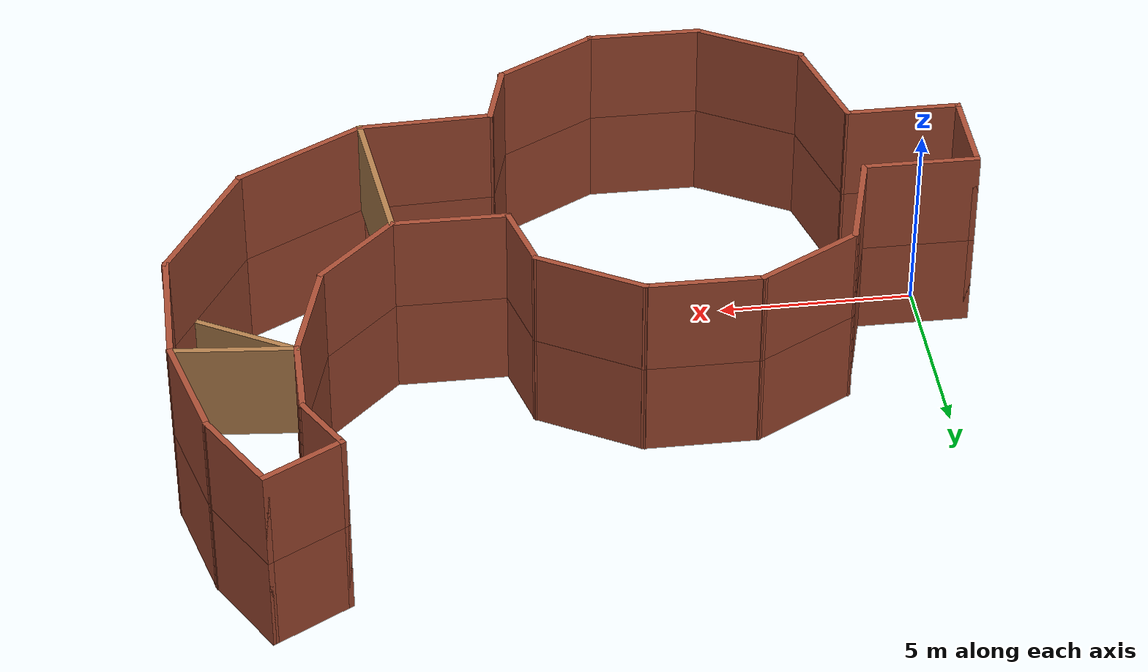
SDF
<?xml version='1.0'?>
<sdf version='1.7'>
  <model name='walls_2'>
    <pose>8.92882 2.76252 0 0 -0 0</pose>
    <link name='Wall_0'>
      <collision name='Wall_0_Collision'>
        <geometry>
          <box>
            <size>2.5 0.15 2.5</size>
          </box>
        </geometry>
        <pose>0 0 1.25 0 -0 0</pose>
      </collision>
      <visual name='Wall_0_Visual'>
        <pose>0 0 1.25 0 -0 0</pose>
        <geometry>
          <box>
            <size>2.5 0.15 2.5</size>
          </box>
        </geometry>
        <material>
          <script>
            <uri>file://media/materials/scripts/gazebo.material</uri>
            <name>Gazebo/Bricks</name>
          </script>
          <ambient>1 1 1 1</ambient>
        </material>
        <meta>
          <layer>0</layer>
        </meta>
      </visual>
      <pose>-10.1188 -2.95752 0 0 -0 -1.5708</pose>
    </link>
    <link name='Wall_10'>
      <collision name='Wall_10_Collision'>
        <geometry>
          <box>
            <size>2 0.15 2.5</size>
          </box>
        </geometry>
        <pose>0 0 1.25 0 -0 0</pose>
      </collision>
      <visual name='Wall_10_Visual'>
        <pose>0 0 1.25 0 -0 0</pose>
        <geometry>
          <box>
            <size>2 0.15 2.5</size>
          </box>
        </geometry>
        <material>
          <script>
            <uri>file://media/materials/scripts/gazebo.material</uri>
            <name>Gazebo/Bricks</name>
          </script>
          <ambient>1 1 1 1</ambient>
        </material>
        <meta>
          <layer>0</layer>
        </meta>
      </visual>
      <pose>1.49456 0.076885 0 0 -0 -1.309</pose>
    </link>
    <link name='Wall_12'>
      <collision name='Wall_12_Collision'>
        <geometry>
          <box>
            <size>3 0.15 2.5</size>
          </box>
        </geometry>
        <pose>0 0 1.25 0 -0 0</pose>
      </collision>
      <visual name='Wall_12_Visual'>
        <pose>0 0 1.25 0 -0 0</pose>
        <geometry>
          <box>
            <size>3 0.15 2.5</size>
          </box>
        </geometry>
        <material>
          <script>
            <uri>file://media/materials/scripts/gazebo.material</uri>
            <name>Gazebo/Bricks</name>
          </script>
          <ambient>1 1 1 1</ambient>
        </material>
        <meta>
          <layer>0</layer>
        </meta>
      </visual>
      <pose>-6.90001 -5.50897 0 0 -0 -1.309</pose>
    </link>
    <link name='Wall_13'>
      <collision name='Wall_13_Collision'>
        <geometry>
          <box>
            <size>3 0.15 2.5</size>
          </box>
        </geometry>
        <pose>0 0 1.25 0 -0 0</pose>
      </collision>
      <visual name='Wall_13_Visual'>
        <pose>0 0 1.25 0 -0 0</pose>
        <geometry>
          <box>
            <size>3 0.15 2.5</size>
          </box>
        </geometry>
        <material>
          <script>
            <uri>file://media/materials/scripts/gazebo.material</uri>
            <name>Gazebo/Bricks</name>
          </script>
          <ambient>1 1 1 1</ambient>
        </material>
        <meta>
          <layer>0</layer>
        </meta>
      </visual>
      <pose>-5.2971 -7.59791 0 0 -0 -0.523599</pose>
    </link>
    <link name='Wall_14'>
      <collision name='Wall_14_Collision'>
        <geometry>
          <box>
            <size>3 0.15 2.5</size>
          </box>
        </geometry>
        <pose>0 0 1.25 0 -0 0</pose>
      </collision>
      <visual name='Wall_14_Visual'>
        <pose>0 0 1.25 0 -0 0</pose>
        <geometry>
          <box>
            <size>3 0.15 2.5</size>
          </box>
        </geometry>
        <material>
          <script>
            <uri>file://media/materials/scripts/gazebo.material</uri>
            <name>Gazebo/Bricks</name>
          </script>
          <ambient>1 1 1 1</ambient>
        </material>
        <meta>
          <layer>0</layer>
        </meta>
      </visual>
      <pose>-2.63802 -8.31041 0 0 -0 0</pose>
    </link>
    <link name='Wall_15'>
      <collision name='Wall_15_Collision'>
        <geometry>
          <box>
            <size>3 0.15 2.5</size>
          </box>
        </geometry>
        <pose>0 0 1.25 0 -0 0</pose>
      </collision>
      <visual name='Wall_15_Visual'>
        <pose>0 0 1.25 0 -0 0</pose>
        <geometry>
          <box>
            <size>3 0.15 2.5</size>
          </box>
        </geometry>
        <material>
          <script>
            <uri>file://media/materials/scripts/gazebo.material</uri>
            <name>Gazebo/Bricks</name>
          </script>
          <ambient>1 1 1 1</ambient>
        </material>
        <meta>
          <layer>0</layer>
        </meta>
      </visual>
      <pose>0.02107 -7.59791 0 0 -0 0.523599</pose>
    </link>
    <link name='Wall_16'>
      <collision name='Wall_16_Collision'>
        <geometry>
          <box>
            <size>2 0.15 2.5</size>
          </box>
        </geometry>
        <pose>0 0 1.25 0 -0 0</pose>
      </collision>
      <visual name='Wall_16_Visual'>
        <pose>0 0 1.25 0 -0 0</pose>
        <geometry>
          <box>
            <size>2 0.15 2.5</size>
          </box>
        </geometry>
        <material>
          <script>
            <uri>file://media/materials/scripts/gazebo.material</uri>
            <name>Gazebo/Bricks</name>
          </script>
          <ambient>1 1 1 1</ambient>
        </material>
        <meta>
          <layer>0</layer>
        </meta>
      </visual>
      <pose>1.49456 -5.99193 0 0 -0 1.309</pose>
    </link>
    <link name='Wall_18'>
      <collision name='Wall_18_Collision'>
        <geometry>
          <box>
            <size>3 0.15 2.5</size>
          </box>
        </geometry>
        <pose>0 0 1.25 0 -0 0</pose>
      </collision>
      <visual name='Wall_18_Visual'>
        <pose>0 0 1.25 0 -0 0</pose>
        <geometry>
          <box>
            <size>3 0.15 2.5</size>
          </box>
        </geometry>
        <material>
          <script>
            <uri>file://media/materials/scripts/gazebo.material</uri>
            <name>Gazebo/Bricks</name>
          </script>
          <ambient>1 1 1 1</ambient>
        </material>
        <meta>
          <layer>0</layer>
        </meta>
      </visual>
      <pose>3.15897 -0.816596 0 0 -0 0</pose>
    </link>
    <link name='Wall_19'>
      <collision name='Wall_19_Collision'>
        <geometry>
          <box>
            <size>2.75 0.15 2.5</size>
          </box>
        </geometry>
        <pose>0 0 1.25 0 -0 0</pose>
      </collision>
      <visual name='Wall_19_Visual'>
        <pose>0 0 1.25 0 -0 0</pose>
        <geometry>
          <box>
            <size>2.75 0.15 2.5</size>
          </box>
        </geometry>
        <material>
          <script>
            <uri>file://media/materials/scripts/gazebo.material</uri>
            <name>Gazebo/Bricks</name>
          </script>
          <ambient>1 1 1 1</ambient>
        </material>
        <meta>
          <layer>0</layer>
        </meta>
      </visual>
      <pose>5.50321 0.102643 0 0 -0 0.785398</pose>
    </link>
    <link name='Wall_2'>
      <collision name='Wall_2_Collision'>
        <geometry>
          <box>
            <size>3 0.15 2.5</size>
          </box>
        </geometry>
        <pose>0 0 1.25 0 -0 0</pose>
      </collision>
      <visual name='Wall_2_Visual'>
        <pose>0 0 1.25 0 -0 0</pose>
        <geometry>
          <box>
            <size>3 0.15 2.5</size>
          </box>
        </geometry>
        <material>
          <script>
            <uri>file://media/materials/scripts/gazebo.material</uri>
            <name>Gazebo/Bricks</name>
          </script>
          <ambient>1 1 1 1</ambient>
        </material>
        <meta>
          <layer>0</layer>
        </meta>
      </visual>
      <pose>-8.69382 -1.78252 0 0 -0 0</pose>
    </link>
    <link name='Wall_20'>
      <collision name='Wall_20_Collision'>
        <geometry>
          <box>
            <size>3 0.15 2.5</size>
          </box>
        </geometry>
        <pose>0 0 1.25 0 -0 0</pose>
      </collision>
      <visual name='Wall_20_Visual'>
        <pose>0 0 1.25 0 -0 0</pose>
        <geometry>
          <box>
            <size>3 0.15 2.5</size>
          </box>
        </geometry>
        <material>
          <script>
            <uri>file://media/materials/scripts/gazebo.material</uri>
            <name>Gazebo/Bricks</name>
          </script>
          <ambient>1 1 1 1</ambient>
        </material>
        <meta>
          <layer>0</layer>
        </meta>
      </visual>
      <pose>6.79127 2.39833 0 0 -0 1.309</pose>
    </link>
    <link name='Wall_21'>
      <collision name='Wall_21_Collision'>
        <geometry>
          <box>
            <size>2.25 0.15 2.5</size>
          </box>
        </geometry>
        <pose>0 0 1.25 0 -0 0</pose>
      </collision>
      <visual name='Wall_21_Visual'>
        <pose>0 0 1.25 0 -0 0</pose>
        <geometry>
          <box>
            <size>2.25 0.15 2.5</size>
          </box>
        </geometry>
        <material>
          <script>
            <uri>file://media/materials/scripts/gazebo.material</uri>
            <name>Gazebo/Bricks</name>
          </script>
          <ambient>1 1 1 1</ambient>
        </material>
        <meta>
          <layer>0</layer>
        </meta>
      </visual>
      <pose>7.16008 4.82477 0 0 -0 1.5708</pose>
    </link>
    <link name='Wall_22'>
      <collision name='Wall_22_Collision'>
        <geometry>
          <box>
            <size>1.75 0.15 2.5</size>
          </box>
        </geometry>
        <pose>0 0 1.25 0 -0 0</pose>
      </collision>
      <visual name='Wall_22_Visual'>
        <pose>0 0 1.25 0 -0 0</pose>
        <geometry>
          <box>
            <size>1.75 0.15 2.5</size>
          </box>
        </geometry>
        <material>
          <script>
            <uri>file://media/materials/scripts/gazebo.material</uri>
            <name>Gazebo/Bricks</name>
          </script>
          <ambient>1 1 1 1</ambient>
        </material>
        <meta>
          <layer>0</layer>
        </meta>
      </visual>
      <pose>6.76008 6.56759 0 0 -0 2.0944</pose>
    </link>
    <link name='Wall_23'>
      <collision name='Wall_23_Collision'>
        <geometry>
          <box>
            <size>2.25 0.15 2.5</size>
          </box>
        </geometry>
        <pose>0 0 1.25 0 -0 0</pose>
      </collision>
      <visual name='Wall_23_Visual'>
        <pose>0 0 1.25 0 -0 0</pose>
        <geometry>
          <box>
            <size>2.25 0.15 2.5</size>
          </box>
        </geometry>
        <material>
          <script>
            <uri>file://media/materials/scripts/gazebo.material</uri>
            <name>Gazebo/Bricks</name>
          </script>
          <ambient>1 1 1 1</ambient>
        </material>
        <meta>
          <layer>0</layer>
        </meta>
      </visual>
      <pose>7.26941 7.78541 0 0 -0 0.523599</pose>
    </link>
    <link name='Wall_27'>
      <collision name='Wall_27_Collision'>
        <geometry>
          <box>
            <size>2.5 0.15 2.5</size>
          </box>
        </geometry>
        <pose>0 0 1.25 0 -0 0</pose>
      </collision>
      <visual name='Wall_27_Visual'>
        <pose>0 0 1.25 0 -0 0</pose>
        <geometry>
          <box>
            <size>2.5 0.15 2.5</size>
          </box>
        </geometry>
        <material>
          <script>
            <uri>file://media/materials/scripts/gazebo.material</uri>
            <name>Gazebo/Bricks</name>
          </script>
          <ambient>1 1 1 1</ambient>
        </material>
        <meta>
          <layer>0</layer>
        </meta>
      </visual>
      <pose>8.76624 7.29283 0 0 -0 -1.0472</pose>
    </link>
    <link name='Wall_28'>
      <collision name='Wall_28_Collision'>
        <geometry>
          <box>
            <size>3 0.15 2.5</size>
          </box>
        </geometry>
        <pose>0 0 1.25 0 -0 0</pose>
      </collision>
      <visual name='Wall_28_Visual'>
        <pose>0 0 1.25 0 -0 0</pose>
        <geometry>
          <box>
            <size>3 0.15 2.5</size>
          </box>
        </geometry>
        <material>
          <script>
            <uri>file://media/materials/scripts/gazebo.material</uri>
            <name>Gazebo/Bricks</name>
          </script>
          <ambient>1 1 1 1</ambient>
        </material>
        <meta>
          <layer>0</layer>
        </meta>
      </visual>
      <pose>9.72255 4.89881 0 0 -0 -1.309</pose>
    </link>
    <link name='Wall_29'>
      <collision name='Wall_29_Collision'>
        <geometry>
          <box>
            <size>3.5 0.15 2.5</size>
          </box>
        </geometry>
        <pose>0 0 1.25 0 -0 0</pose>
      </collision>
      <visual name='Wall_29_Visual'>
        <pose>0 0 1.25 0 -0 0</pose>
        <geometry>
          <box>
            <size>3.5 0.15 2.5</size>
          </box>
        </geometry>
        <material>
          <script>
            <uri>file://media/materials/scripts/gazebo.material</uri>
            <name>Gazebo/Bricks</name>
          </script>
          <ambient>1 1 1 1</ambient>
        </material>
        <meta>
          <layer>0</layer>
        </meta>
      </visual>
      <pose>10.0914 1.84736 0 0 -0 -1.5708</pose>
    </link>
    <link name='Wall_30'>
      <collision name='Wall_30_Collision'>
        <geometry>
          <box>
            <size>4 0.15 2.5</size>
          </box>
        </geometry>
        <pose>0 0 1.25 0 -0 0</pose>
      </collision>
      <visual name='Wall_30_Visual'>
        <pose>0 0 1.25 0 -0 0</pose>
        <geometry>
          <box>
            <size>4 0.15 2.5</size>
          </box>
        </geometry>
        <material>
          <script>
            <uri>file://media/materials/scripts/gazebo.material</uri>
            <name>Gazebo/Bricks</name>
          </script>
          <ambient>1 1 1 1</ambient>
        </material>
        <meta>
          <layer>0</layer>
        </meta>
      </visual>
      <pose>9.12887 -1.49474 0 0 -0 -2.0944</pose>
    </link>
    <link name='Wall_31'>
      <collision name='Wall_31_Collision'>
        <geometry>
          <box>
            <size>3.75 0.15 2.5</size>
          </box>
        </geometry>
        <pose>0 0 1.25 0 -0 0</pose>
      </collision>
      <visual name='Wall_31_Visual'>
        <pose>0 0 1.25 0 -0 0</pose>
        <geometry>
          <box>
            <size>3.75 0.15 2.5</size>
          </box>
        </geometry>
        <material>
          <script>
            <uri>file://media/materials/scripts/gazebo.material</uri>
            <name>Gazebo/Bricks</name>
          </script>
          <ambient>1 1 1 1</ambient>
        </material>
        <meta>
          <layer>0</layer>
        </meta>
      </visual>
      <pose>6.60752 -4.06184 0 0 -0 -2.61799</pose>
    </link>
    <link name='Wall_32'>
      <collision name='Wall_32_Collision'>
        <geometry>
          <box>
            <size>3.46752 0.15 2.5</size>
          </box>
        </geometry>
        <pose>0 0 1.25 0 -0 0</pose>
      </collision>
      <visual name='Wall_32_Visual'>
        <pose>0 0 1.25 0 -0 0</pose>
        <geometry>
          <box>
            <size>3.46752 0.15 2.5</size>
          </box>
        </geometry>
        <material>
          <script>
            <uri>file://media/materials/scripts/gazebo.material</uri>
            <name>Gazebo/Bricks</name>
          </script>
          <ambient>1 1 1 1</ambient>
        </material>
        <meta>
          <layer>0</layer>
        </meta>
      </visual>
      <pose>3.39133 -5.03014 0 0 -0 -3.1004</pose>
    </link>
    <link name='Wall_38'>
      <collision name='Wall_38_Collision'>
        <geometry>
          <box>
            <size>3.75 0.15 2.5</size>
          </box>
        </geometry>
        <pose>0 0 1.25 0 -0 0</pose>
      </collision>
      <visual name='Wall_38_Visual'>
        <pose>0 0 1.25 0 -0 0</pose>
        <geometry>
          <box>
            <size>3.75 0.15 2.5</size>
          </box>
        </geometry>
        <material>
          <script>
            <uri>file://media/materials/scripts/gazebo.material</uri>
            <name>Gazebo/Wood</name>
          </script>
          <ambient>1 1 1 1</ambient>
        </material>
        <meta>
          <layer>0</layer>
        </meta>
      </visual>
      <pose>7.9813 0.121882 0 0 -0 -0.523599</pose>
    </link>
    <link name='Wall_4'>
      <collision name='Wall_4_Collision'>
        <geometry>
          <box>
            <size>3 0.15 2.5</size>
          </box>
        </geometry>
        <pose>0 0 1.25 0 -0 0</pose>
      </collision>
      <visual name='Wall_4_Visual'>
        <pose>0 0 1.25 0 -0 0</pose>
        <geometry>
          <box>
            <size>3 0.15 2.5</size>
          </box>
        </geometry>
        <material>
          <script>
            <uri>file://media/materials/scripts/gazebo.material</uri>
            <name>Gazebo/Bricks</name>
          </script>
          <ambient>1 1 1 1</ambient>
        </material>
        <meta>
          <layer>0</layer>
        </meta>
      </visual>
      <pose>-8.69382 -4.13252 0 0 -0 0</pose>
    </link>
    <link name='Wall_40'>
      <collision name='Wall_40_Collision'>
        <geometry>
          <box>
            <size>2.5 0.15 2.5</size>
          </box>
        </geometry>
        <pose>0 0 1.25 0 -0 0</pose>
      </collision>
      <visual name='Wall_40_Visual'>
        <pose>0 0 1.25 0 -0 0</pose>
        <geometry>
          <box>
            <size>2.5 0.15 2.5</size>
          </box>
        </geometry>
        <material>
          <script>
            <uri>file://media/materials/scripts/gazebo.material</uri>
            <name>Gazebo/Bricks</name>
          </script>
          <ambient>1 1 1 1</ambient>
        </material>
        <meta>
          <layer>1</layer>
        </meta>
      </visual>
      <pose>-10.1188 -2.95752 2.5 0 -0 -1.5708</pose>
    </link>
    <link name='Wall_41'>
      <collision name='Wall_41_Collision'>
        <geometry>
          <box>
            <size>3 0.15 2.5</size>
          </box>
        </geometry>
        <pose>0 0 1.25 0 -0 0</pose>
      </collision>
      <visual name='Wall_41_Visual'>
        <pose>0 0 1.25 0 -0 0</pose>
        <geometry>
          <box>
            <size>3 0.15 2.5</size>
          </box>
        </geometry>
        <material>
          <script>
            <uri>file://media/materials/scripts/gazebo.material</uri>
            <name>Gazebo/Bricks</name>
          </script>
          <ambient>1 1 1 1</ambient>
        </material>
        <meta>
          <layer>1</layer>
        </meta>
      </visual>
      <pose>-8.69382 -1.78252 2.5 0 -0 0</pose>
    </link>
    <link name='Wall_42'>
      <collision name='Wall_42_Collision'>
        <geometry>
          <box>
            <size>3 0.15 2.5</size>
          </box>
        </geometry>
        <pose>0 0 1.25 0 -0 0</pose>
      </collision>
      <visual name='Wall_42_Visual'>
        <pose>0 0 1.25 0 -0 0</pose>
        <geometry>
          <box>
            <size>3 0.15 2.5</size>
          </box>
        </geometry>
        <material>
          <script>
            <uri>file://media/materials/scripts/gazebo.material</uri>
            <name>Gazebo/Bricks</name>
          </script>
          <ambient>1 1 1 1</ambient>
        </material>
        <meta>
          <layer>1</layer>
        </meta>
      </visual>
      <pose>-8.69382 -4.13252 2.5 0 -0 0</pose>
    </link>
    <link name='Wall_43'>
      <collision name='Wall_43_Collision'>
        <geometry>
          <box>
            <size>3 0.15 2.5</size>
          </box>
        </geometry>
        <pose>0 0 1.25 0 -0 0</pose>
      </collision>
      <visual name='Wall_43_Visual'>
        <pose>0 0 1.25 0 -0 0</pose>
        <geometry>
          <box>
            <size>3 0.15 2.5</size>
          </box>
        </geometry>
        <material>
          <script>
            <uri>file://media/materials/scripts/gazebo.material</uri>
            <name>Gazebo/Bricks</name>
          </script>
          <ambient>1 1 1 1</ambient>
        </material>
        <meta>
          <layer>1</layer>
        </meta>
      </visual>
      <pose>-6.90001 -0.406077 2.5 0 -0 1.309</pose>
    </link>
    <link name='Wall_44'>
      <collision name='Wall_44_Collision'>
        <geometry>
          <box>
            <size>3 0.15 2.5</size>
          </box>
        </geometry>
        <pose>0 0 1.25 0 -0 0</pose>
      </collision>
      <visual name='Wall_44_Visual'>
        <pose>0 0 1.25 0 -0 0</pose>
        <geometry>
          <box>
            <size>3 0.15 2.5</size>
          </box>
        </geometry>
        <material>
          <script>
            <uri>file://media/materials/scripts/gazebo.material</uri>
            <name>Gazebo/Bricks</name>
          </script>
          <ambient>1 1 1 1</ambient>
        </material>
        <meta>
          <layer>1</layer>
        </meta>
      </visual>
      <pose>-5.2971 1.68287 2.5 0 -0 0.523599</pose>
    </link>
    <link name='Wall_45'>
      <collision name='Wall_45_Collision'>
        <geometry>
          <box>
            <size>3 0.15 2.5</size>
          </box>
        </geometry>
        <pose>0 0 1.25 0 -0 0</pose>
      </collision>
      <visual name='Wall_45_Visual'>
        <pose>0 0 1.25 0 -0 0</pose>
        <geometry>
          <box>
            <size>3 0.15 2.5</size>
          </box>
        </geometry>
        <material>
          <script>
            <uri>file://media/materials/scripts/gazebo.material</uri>
            <name>Gazebo/Bricks</name>
          </script>
          <ambient>1 1 1 1</ambient>
        </material>
        <meta>
          <layer>1</layer>
        </meta>
      </visual>
      <pose>-2.63802 2.39537 2.5 0 -0 0</pose>
    </link>
    <link name='Wall_46'>
      <collision name='Wall_46_Collision'>
        <geometry>
          <box>
            <size>3 0.15 2.5</size>
          </box>
        </geometry>
        <pose>0 0 1.25 0 -0 0</pose>
      </collision>
      <visual name='Wall_46_Visual'>
        <pose>0 0 1.25 0 -0 0</pose>
        <geometry>
          <box>
            <size>3 0.15 2.5</size>
          </box>
        </geometry>
        <material>
          <script>
            <uri>file://media/materials/scripts/gazebo.material</uri>
            <name>Gazebo/Bricks</name>
          </script>
          <ambient>1 1 1 1</ambient>
        </material>
        <meta>
          <layer>1</layer>
        </meta>
      </visual>
      <pose>0.02107 1.68287 2.5 0 -0 -0.523599</pose>
    </link>
    <link name='Wall_47'>
      <collision name='Wall_47_Collision'>
        <geometry>
          <box>
            <size>2 0.15 2.5</size>
          </box>
        </geometry>
        <pose>0 0 1.25 0 -0 0</pose>
      </collision>
      <visual name='Wall_47_Visual'>
        <pose>0 0 1.25 0 -0 0</pose>
        <geometry>
          <box>
            <size>2 0.15 2.5</size>
          </box>
        </geometry>
        <material>
          <script>
            <uri>file://media/materials/scripts/gazebo.material</uri>
            <name>Gazebo/Bricks</name>
          </script>
          <ambient>1 1 1 1</ambient>
        </material>
        <meta>
          <layer>1</layer>
        </meta>
      </visual>
      <pose>1.49456 0.076886 2.5 0 -0 -1.309</pose>
    </link>
    <link name='Wall_48'>
      <collision name='Wall_48_Collision'>
        <geometry>
          <box>
            <size>3 0.15 2.5</size>
          </box>
        </geometry>
        <pose>0 0 1.25 0 -0 0</pose>
      </collision>
      <visual name='Wall_48_Visual'>
        <pose>0 0 1.25 0 -0 0</pose>
        <geometry>
          <box>
            <size>3 0.15 2.5</size>
          </box>
        </geometry>
        <material>
          <script>
            <uri>file://media/materials/scripts/gazebo.material</uri>
            <name>Gazebo/Bricks</name>
          </script>
          <ambient>1 1 1 1</ambient>
        </material>
        <meta>
          <layer>1</layer>
        </meta>
      </visual>
      <pose>-6.90001 -5.50897 2.5 0 -0 -1.309</pose>
    </link>
    <link name='Wall_49'>
      <collision name='Wall_49_Collision'>
        <geometry>
          <box>
            <size>3 0.15 2.5</size>
          </box>
        </geometry>
        <pose>0 0 1.25 0 -0 0</pose>
      </collision>
      <visual name='Wall_49_Visual'>
        <pose>0 0 1.25 0 -0 0</pose>
        <geometry>
          <box>
            <size>3 0.15 2.5</size>
          </box>
        </geometry>
        <material>
          <script>
            <uri>file://media/materials/scripts/gazebo.material</uri>
            <name>Gazebo/Bricks</name>
          </script>
          <ambient>1 1 1 1</ambient>
        </material>
        <meta>
          <layer>1</layer>
        </meta>
      </visual>
      <pose>-5.2971 -7.59791 2.5 0 -0 -0.523599</pose>
    </link>
    <link name='Wall_50'>
      <collision name='Wall_50_Collision'>
        <geometry>
          <box>
            <size>3 0.15 2.5</size>
          </box>
        </geometry>
        <pose>0 0 1.25 0 -0 0</pose>
      </collision>
      <visual name='Wall_50_Visual'>
        <pose>0 0 1.25 0 -0 0</pose>
        <geometry>
          <box>
            <size>3 0.15 2.5</size>
          </box>
        </geometry>
        <material>
          <script>
            <uri>file://media/materials/scripts/gazebo.material</uri>
            <name>Gazebo/Bricks</name>
          </script>
          <ambient>1 1 1 1</ambient>
        </material>
        <meta>
          <layer>1</layer>
        </meta>
      </visual>
      <pose>-2.63802 -8.31041 2.5 0 -0 0</pose>
    </link>
    <link name='Wall_51'>
      <collision name='Wall_51_Collision'>
        <geometry>
          <box>
            <size>3 0.15 2.5</size>
          </box>
        </geometry>
        <pose>0 0 1.25 0 -0 0</pose>
      </collision>
      <visual name='Wall_51_Visual'>
        <pose>0 0 1.25 0 -0 0</pose>
        <geometry>
          <box>
            <size>3 0.15 2.5</size>
          </box>
        </geometry>
        <material>
          <script>
            <uri>file://media/materials/scripts/gazebo.material</uri>
            <name>Gazebo/Bricks</name>
          </script>
          <ambient>1 1 1 1</ambient>
        </material>
        <meta>
          <layer>1</layer>
        </meta>
      </visual>
      <pose>0.02107 -7.59791 2.5 0 -0 0.523599</pose>
    </link>
    <link name='Wall_52'>
      <collision name='Wall_52_Collision'>
        <geometry>
          <box>
            <size>2 0.15 2.5</size>
          </box>
        </geometry>
        <pose>0 0 1.25 0 -0 0</pose>
      </collision>
      <visual name='Wall_52_Visual'>
        <pose>0 0 1.25 0 -0 0</pose>
        <geometry>
          <box>
            <size>2 0.15 2.5</size>
          </box>
        </geometry>
        <material>
          <script>
            <uri>file://media/materials/scripts/gazebo.material</uri>
            <name>Gazebo/Bricks</name>
          </script>
          <ambient>1 1 1 1</ambient>
        </material>
        <meta>
          <layer>1</layer>
        </meta>
      </visual>
      <pose>1.49456 -5.99193 2.5 0 -0 1.309</pose>
    </link>
    <link name='Wall_53'>
      <collision name='Wall_53_Collision'>
        <geometry>
          <box>
            <size>3 0.15 2.5</size>
          </box>
        </geometry>
        <pose>0 0 1.25 0 -0 0</pose>
      </collision>
      <visual name='Wall_53_Visual'>
        <pose>0 0 1.25 0 -0 0</pose>
        <geometry>
          <box>
            <size>3 0.15 2.5</size>
          </box>
        </geometry>
        <material>
          <script>
            <uri>file://media/materials/scripts/gazebo.material</uri>
            <name>Gazebo/Bricks</name>
          </script>
          <ambient>1 1 1 1</ambient>
        </material>
        <meta>
          <layer>1</layer>
        </meta>
      </visual>
      <pose>3.15897 -0.816596 2.5 0 -0 0</pose>
    </link>
    <link name='Wall_54'>
      <collision name='Wall_54_Collision'>
        <geometry>
          <box>
            <size>2.75 0.15 2.5</size>
          </box>
        </geometry>
        <pose>0 0 1.25 0 -0 0</pose>
      </collision>
      <visual name='Wall_54_Visual'>
        <pose>0 0 1.25 0 -0 0</pose>
        <geometry>
          <box>
            <size>2.75 0.15 2.5</size>
          </box>
        </geometry>
        <material>
          <script>
            <uri>file://media/materials/scripts/gazebo.material</uri>
            <name>Gazebo/Bricks</name>
          </script>
          <ambient>1 1 1 1</ambient>
        </material>
        <meta>
          <layer>1</layer>
        </meta>
      </visual>
      <pose>5.50321 0.102643 2.5 0 -0 0.785398</pose>
    </link>
    <link name='Wall_55'>
      <collision name='Wall_55_Collision'>
        <geometry>
          <box>
            <size>3 0.15 2.5</size>
          </box>
        </geometry>
        <pose>0 0 1.25 0 -0 0</pose>
      </collision>
      <visual name='Wall_55_Visual'>
        <pose>0 0 1.25 0 -0 0</pose>
        <geometry>
          <box>
            <size>3 0.15 2.5</size>
          </box>
        </geometry>
        <material>
          <script>
            <uri>file://media/materials/scripts/gazebo.material</uri>
            <name>Gazebo/Bricks</name>
          </script>
          <ambient>1 1 1 1</ambient>
        </material>
        <meta>
          <layer>1</layer>
        </meta>
      </visual>
      <pose>6.79127 2.39833 2.5 0 -0 1.309</pose>
    </link>
    <link name='Wall_56'>
      <collision name='Wall_56_Collision'>
        <geometry>
          <box>
            <size>2.25 0.15 2.5</size>
          </box>
        </geometry>
        <pose>0 0 1.25 0 -0 0</pose>
      </collision>
      <visual name='Wall_56_Visual'>
        <pose>0 0 1.25 0 -0 0</pose>
        <geometry>
          <box>
            <size>2.25 0.15 2.5</size>
          </box>
        </geometry>
        <material>
          <script>
            <uri>file://media/materials/scripts/gazebo.material</uri>
            <name>Gazebo/Bricks</name>
          </script>
          <ambient>1 1 1 1</ambient>
        </material>
        <meta>
          <layer>1</layer>
        </meta>
      </visual>
      <pose>7.16008 4.82477 2.5 0 -0 1.5708</pose>
    </link>
    <link name='Wall_57'>
      <collision name='Wall_57_Collision'>
        <geometry>
          <box>
            <size>1.75 0.15 2.5</size>
          </box>
        </geometry>
        <pose>0 0 1.25 0 -0 0</pose>
      </collision>
      <visual name='Wall_57_Visual'>
        <pose>0 0 1.25 0 -0 0</pose>
        <geometry>
          <box>
            <size>1.75 0.15 2.5</size>
          </box>
        </geometry>
        <material>
          <script>
            <uri>file://media/materials/scripts/gazebo.material</uri>
            <name>Gazebo/Bricks</name>
          </script>
          <ambient>1 1 1 1</ambient>
        </material>
        <meta>
          <layer>1</layer>
        </meta>
      </visual>
      <pose>6.76008 6.56759 2.5 0 -0 2.0944</pose>
    </link>
    <link name='Wall_58'>
      <collision name='Wall_58_Collision'>
        <geometry>
          <box>
            <size>2.25 0.15 2.5</size>
          </box>
        </geometry>
        <pose>0 0 1.25 0 -0 0</pose>
      </collision>
      <visual name='Wall_58_Visual'>
        <pose>0 0 1.25 0 -0 0</pose>
        <geometry>
          <box>
            <size>2.25 0.15 2.5</size>
          </box>
        </geometry>
        <material>
          <script>
            <uri>file://media/materials/scripts/gazebo.material</uri>
            <name>Gazebo/Bricks</name>
          </script>
          <ambient>1 1 1 1</ambient>
        </material>
        <meta>
          <layer>1</layer>
        </meta>
      </visual>
      <pose>7.26941 7.78541 2.5 0 -0 0.523599</pose>
    </link>
    <link name='Wall_59'>
      <collision name='Wall_59_Collision'>
        <geometry>
          <box>
            <size>2.5 0.15 2.5</size>
          </box>
        </geometry>
        <pose>0 0 1.25 0 -0 0</pose>
      </collision>
      <visual name='Wall_59_Visual'>
        <pose>0 0 1.25 0 -0 0</pose>
        <geometry>
          <box>
            <size>2.5 0.15 2.5</size>
          </box>
        </geometry>
        <material>
          <script>
            <uri>file://media/materials/scripts/gazebo.material</uri>
            <name>Gazebo/Bricks</name>
          </script>
          <ambient>1 1 1 1</ambient>
        </material>
        <meta>
          <layer>1</layer>
        </meta>
      </visual>
      <pose>8.76624 7.29283 2.5 0 -0 -1.0472</pose>
    </link>
    <link name='Wall_6'>
      <collision name='Wall_6_Collision'>
        <geometry>
          <box>
            <size>3 0.15 2.5</size>
          </box>
        </geometry>
        <pose>0 0 1.25 0 -0 0</pose>
      </collision>
      <visual name='Wall_6_Visual'>
        <pose>0 0 1.25 0 -0 0</pose>
        <geometry>
          <box>
            <size>3 0.15 2.5</size>
          </box>
        </geometry>
        <material>
          <script>
            <uri>file://media/materials/scripts/gazebo.material</uri>
            <name>Gazebo/Bricks</name>
          </script>
          <ambient>1 1 1 1</ambient>
        </material>
        <meta>
          <layer>0</layer>
        </meta>
      </visual>
      <pose>-6.90001 -0.406077 0 0 -0 1.309</pose>
    </link>
    <link name='Wall_60'>
      <collision name='Wall_60_Collision'>
        <geometry>
          <box>
            <size>3 0.15 2.5</size>
          </box>
        </geometry>
        <pose>0 0 1.25 0 -0 0</pose>
      </collision>
      <visual name='Wall_60_Visual'>
        <pose>0 0 1.25 0 -0 0</pose>
        <geometry>
          <box>
            <size>3 0.15 2.5</size>
          </box>
        </geometry>
        <material>
          <script>
            <uri>file://media/materials/scripts/gazebo.material</uri>
            <name>Gazebo/Bricks</name>
          </script>
          <ambient>1 1 1 1</ambient>
        </material>
        <meta>
          <layer>1</layer>
        </meta>
      </visual>
      <pose>9.72255 4.89881 2.5 0 -0 -1.309</pose>
    </link>
    <link name='Wall_61'>
      <collision name='Wall_61_Collision'>
        <geometry>
          <box>
            <size>3.5 0.15 2.5</size>
          </box>
        </geometry>
        <pose>0 0 1.25 0 -0 0</pose>
      </collision>
      <visual name='Wall_61_Visual'>
        <pose>0 0 1.25 0 -0 0</pose>
        <geometry>
          <box>
            <size>3.5 0.15 2.5</size>
          </box>
        </geometry>
        <material>
          <script>
            <uri>file://media/materials/scripts/gazebo.material</uri>
            <name>Gazebo/Bricks</name>
          </script>
          <ambient>1 1 1 1</ambient>
        </material>
        <meta>
          <layer>1</layer>
        </meta>
      </visual>
      <pose>10.0914 1.84736 2.5 0 -0 -1.5708</pose>
    </link>
    <link name='Wall_62'>
      <collision name='Wall_62_Collision'>
        <geometry>
          <box>
            <size>4 0.15 2.5</size>
          </box>
        </geometry>
        <pose>0 0 1.25 0 -0 0</pose>
      </collision>
      <visual name='Wall_62_Visual'>
        <pose>0 0 1.25 0 -0 0</pose>
        <geometry>
          <box>
            <size>4 0.15 2.5</size>
          </box>
        </geometry>
        <material>
          <script>
            <uri>file://media/materials/scripts/gazebo.material</uri>
            <name>Gazebo/Bricks</name>
          </script>
          <ambient>1 1 1 1</ambient>
        </material>
        <meta>
          <layer>1</layer>
        </meta>
      </visual>
      <pose>9.12887 -1.49474 2.5 0 -0 -2.0944</pose>
    </link>
    <link name='Wall_63'>
      <collision name='Wall_63_Collision'>
        <geometry>
          <box>
            <size>3.75 0.15 2.5</size>
          </box>
        </geometry>
        <pose>0 0 1.25 0 -0 0</pose>
      </collision>
      <visual name='Wall_63_Visual'>
        <pose>0 0 1.25 0 -0 0</pose>
        <geometry>
          <box>
            <size>3.75 0.15 2.5</size>
          </box>
        </geometry>
        <material>
          <script>
            <uri>file://media/materials/scripts/gazebo.material</uri>
            <name>Gazebo/Bricks</name>
          </script>
          <ambient>1 1 1 1</ambient>
        </material>
        <meta>
          <layer>1</layer>
        </meta>
      </visual>
      <pose>6.60752 -4.06184 2.5 0 -0 -2.61799</pose>
    </link>
    <link name='Wall_64'>
      <collision name='Wall_64_Collision'>
        <geometry>
          <box>
            <size>3.46752 0.15 2.5</size>
          </box>
        </geometry>
        <pose>0 0 1.25 0 -0 0</pose>
      </collision>
      <visual name='Wall_64_Visual'>
        <pose>0 0 1.25 0 -0 0</pose>
        <geometry>
          <box>
            <size>3.46752 0.15 2.5</size>
          </box>
        </geometry>
        <material>
          <script>
            <uri>file://media/materials/scripts/gazebo.material</uri>
            <name>Gazebo/Bricks</name>
          </script>
          <ambient>1 1 1 1</ambient>
        </material>
        <meta>
          <layer>1</layer>
        </meta>
      </visual>
      <pose>3.39133 -5.03014 2.5 0 -0 -3.1004</pose>
    </link>
    <link name='Wall_66'>
      <collision name='Wall_66_Collision'>
        <geometry>
          <box>
            <size>4.32121 0.15 2.5</size>
          </box>
        </geometry>
        <pose>0 0 1.25 0 -0 0</pose>
      </collision>
      <visual name='Wall_66_Visual'>
        <pose>0 0 1.25 0 -0 0</pose>
        <geometry>
          <box>
            <size>4.32121 0.15 2.5</size>
          </box>
        </geometry>
        <material>
          <script>
            <uri>file://media/materials/scripts/gazebo.material</uri>
            <name>Gazebo/Wood</name>
          </script>
          <ambient>1 1 1 1</ambient>
        </material>
        <meta>
          <layer>1</layer>
        </meta>
      </visual>
      <pose>4.81633 -2.88922 2.5 0 -0 -1.45916</pose>
    </link>
    <link name='Wall_68'>
      <collision name='Wall_68_Collision'>
        <geometry>
          <box>
            <size>3.09213 0.15 2.5</size>
          </box>
        </geometry>
        <pose>0 0 1.25 0 -0 0</pose>
      </collision>
      <visual name='Wall_68_Visual'>
        <pose>0 0 1.25 0 -0 0</pose>
        <geometry>
          <box>
            <size>3.09213 0.15 2.5</size>
          </box>
        </geometry>
        <material>
          <script>
            <uri>file://media/materials/scripts/gazebo.material</uri>
            <name>Gazebo/Wood</name>
          </script>
          <ambient>1 1 1 1</ambient>
        </material>
        <meta>
          <layer>1</layer>
        </meta>
      </visual>
      <pose>8.62573 3.64857 2.5 0 -0 -0.085896</pose>
    </link>
    <link name='Wall_7'>
      <collision name='Wall_7_Collision'>
        <geometry>
          <box>
            <size>3 0.15 2.5</size>
          </box>
        </geometry>
        <pose>0 0 1.25 0 -0 0</pose>
      </collision>
      <visual name='Wall_7_Visual'>
        <pose>0 0 1.25 0 -0 0</pose>
        <geometry>
          <box>
            <size>3 0.15 2.5</size>
          </box>
        </geometry>
        <material>
          <script>
            <uri>file://media/materials/scripts/gazebo.material</uri>
            <name>Gazebo/Bricks</name>
          </script>
          <ambient>1 1 1 1</ambient>
        </material>
        <meta>
          <layer>0</layer>
        </meta>
      </visual>
      <pose>-5.2971 1.68287 0 0 -0 0.523599</pose>
    </link>
    <link name='Wall_8'>
      <collision name='Wall_8_Collision'>
        <geometry>
          <box>
            <size>3 0.15 2.5</size>
          </box>
        </geometry>
        <pose>0 0 1.25 0 -0 0</pose>
      </collision>
      <visual name='Wall_8_Visual'>
        <pose>0 0 1.25 0 -0 0</pose>
        <geometry>
          <box>
            <size>3 0.15 2.5</size>
          </box>
        </geometry>
        <material>
          <script>
            <uri>file://media/materials/scripts/gazebo.material</uri>
            <name>Gazebo/Bricks</name>
          </script>
          <ambient>1 1 1 1</ambient>
        </material>
        <meta>
          <layer>0</layer>
        </meta>
      </visual>
      <pose>-2.63802 2.39537 0 0 -0 0</pose>
    </link>
    <link name='Wall_9'>
      <collision name='Wall_9_Collision'>
        <geometry>
          <box>
            <size>3 0.15 2.5</size>
          </box>
        </geometry>
        <pose>0 0 1.25 0 -0 0</pose>
      </collision>
      <visual name='Wall_9_Visual'>
        <pose>0 0 1.25 0 -0 0</pose>
        <geometry>
          <box>
            <size>3 0.15 2.5</size>
          </box>
        </geometry>
        <material>
          <script>
            <uri>file://media/materials/scripts/gazebo.material</uri>
            <name>Gazebo/Bricks</name>
          </script>
          <ambient>1 1 1 1</ambient>
        </material>
        <meta>
          <layer>0</layer>
        </meta>
      </visual>
      <pose>0.02107 1.68287 0 0 -0 -0.523599</pose>
    </link>
    <static>1</static>
  </model>
</sdf>
